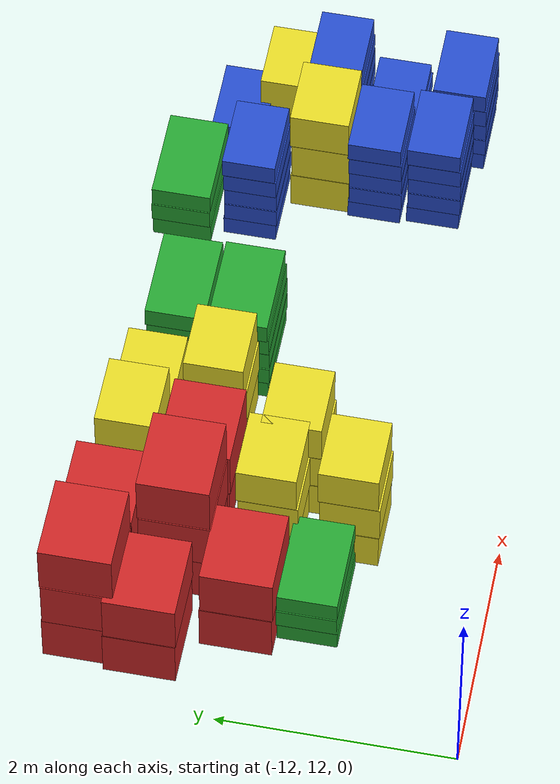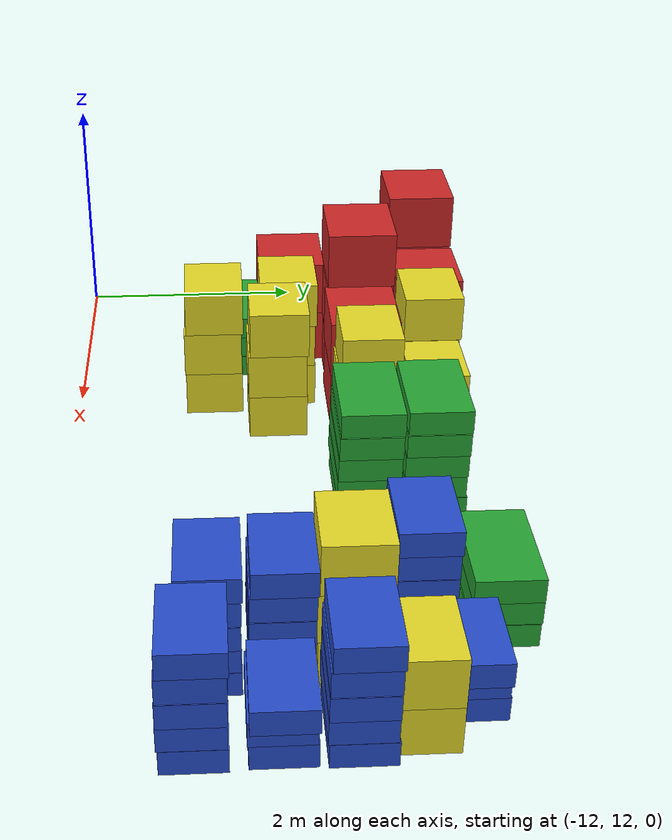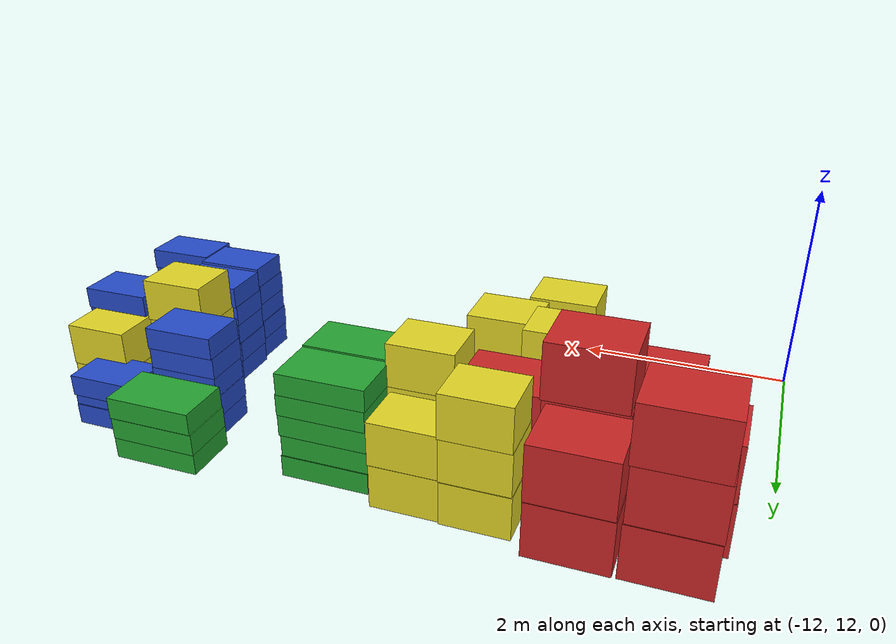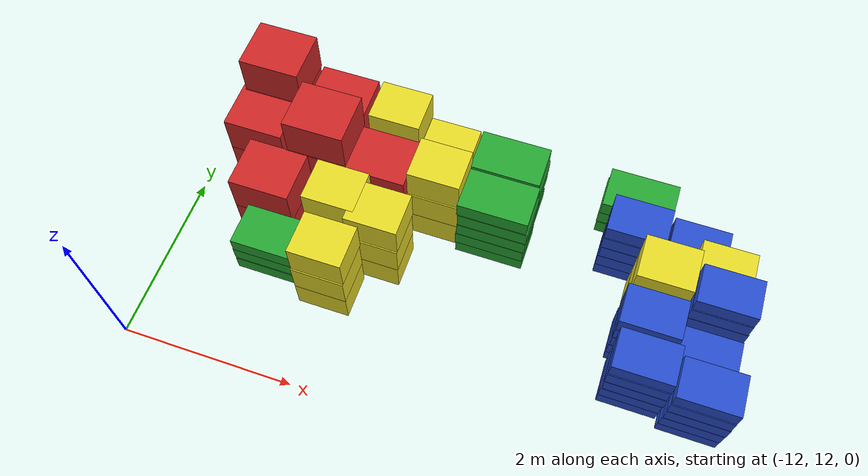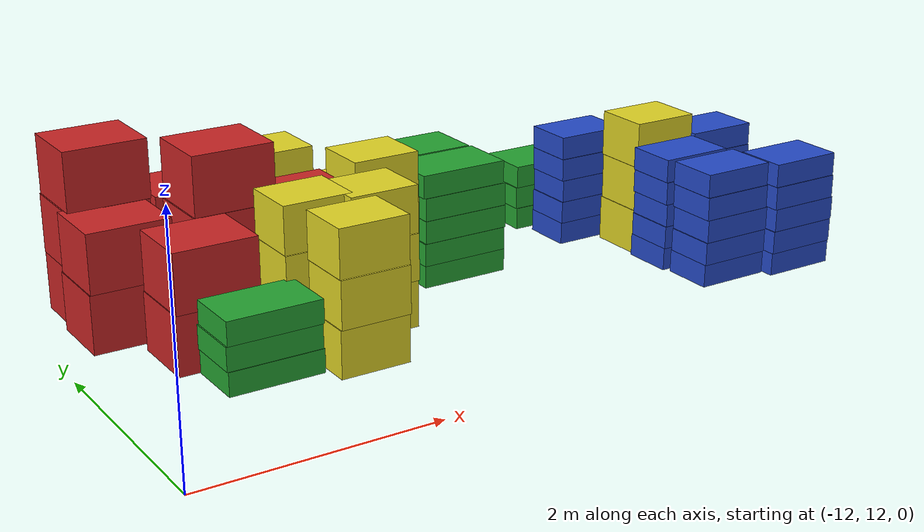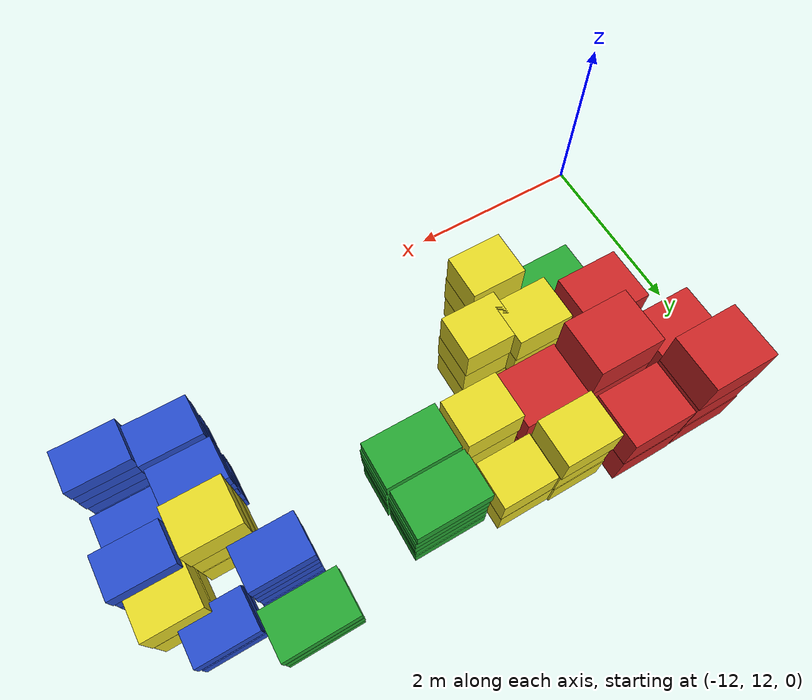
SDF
<sdf version="1.4">
 <model name="factory_baggage_group_B">
  <model name="baggage_A_x2_28">
   <model name="baggage_A_0">
    <static>1</static>
    <link name="link">
     <collision name="collision"><geometry><box><size>0.7 0.6 0.5</size></box></geometry></collision>
     <visual name="visual">
      <geometry><box><size>0.7 0.6 0.5</size></box></geometry>
      <material>
       <script><uri>file://media/materials/scripts/gazebo.material</uri><name>Gazebo/Red</name></script>
      </material>
     </visual>
    </link>
    <pose>0 0 0.25 0 -0 0</pose>
   </model>
   <model name="baggage_A_1">
    <static>1</static>
    <link name="link">
     <collision name="collision"><geometry><box><size>0.7 0.6 0.5</size></box></geometry></collision>
     <visual name="visual">
      <geometry><box><size>0.7 0.6 0.5</size></box></geometry>
      <material>
       <script><uri>file://media/materials/scripts/gazebo.material</uri><name>Gazebo/Red</name></script>
      </material>
     </visual>
    </link>
    <pose>0.0063 -0.0062 0.75 0 -0 0</pose>
   </model>
   <pose>-11.3518 14.6733 0 0 -0 0</pose>
  </model>
  <model name="baggage_A_x3_27">
   <model name="baggage_A_0">
    <static>1</static>
    <link name="link">
     <collision name="collision"><geometry><box><size>0.7 0.6 0.5</size></box></geometry></collision>
     <visual name="visual">
      <geometry><box><size>0.7 0.6 0.5</size></box></geometry>
      <material>
       <script><uri>file://media/materials/scripts/gazebo.material</uri><name>Gazebo/Red</name></script>
      </material>
     </visual>
    </link>
    <pose>0 0 0.25 0 -0 0</pose>
   </model>
   <model name="baggage_A_1">
    <static>1</static>
    <link name="link">
     <collision name="collision"><geometry><box><size>0.7 0.6 0.5</size></box></geometry></collision>
     <visual name="visual">
      <geometry><box><size>0.7 0.6 0.5</size></box></geometry>
      <material>
       <script><uri>file://media/materials/scripts/gazebo.material</uri><name>Gazebo/Red</name></script>
      </material>
     </visual>
    </link>
    <pose>-0.006 -0.0077 0.75 0 -0 0</pose>
   </model>
   <model name="baggage_A_2">
    <static>1</static>
    <link name="link">
     <collision name="collision"><geometry><box><size>0.7 0.6 0.5</size></box></geometry></collision>
     <visual name="visual">
      <geometry><box><size>0.7 0.6 0.5</size></box></geometry>
      <material>
       <script><uri>file://media/materials/scripts/gazebo.material</uri><name>Gazebo/Red</name></script>
      </material>
     </visual>
    </link>
    <pose>0.0045 0.0005 1.25 0 -0 0</pose>
   </model>
   <pose>-11.2994 15.1834 0 0 -0 0</pose>
  </model>
  <model name="baggage_A_x2_29">
   <model name="baggage_A_0">
    <static>1</static>
    <link name="link">
     <collision name="collision"><geometry><box><size>0.7 0.6 0.5</size></box></geometry></collision>
     <visual name="visual">
      <geometry><box><size>0.7 0.6 0.5</size></box></geometry>
      <material>
       <script><uri>file://media/materials/scripts/gazebo.material</uri><name>Gazebo/Red</name></script>
      </material>
     </visual>
    </link>
    <pose>0 0 0.25 0 -0 0</pose>
   </model>
   <model name="baggage_A_1">
    <static>1</static>
    <link name="link">
     <collision name="collision"><geometry><box><size>0.7 0.6 0.5</size></box></geometry></collision>
     <visual name="visual">
      <geometry><box><size>0.7 0.6 0.5</size></box></geometry>
      <material>
       <script><uri>file://media/materials/scripts/gazebo.material</uri><name>Gazebo/Red</name></script>
      </material>
     </visual>
    </link>
    <pose>0.0063 -0.0062 0.75 0 -0 0</pose>
   </model>
   <pose>-10.5679 15.1891 0 0 -0 0</pose>
  </model>
  <model name="baggage_A_x3_28">
   <model name="baggage_A_0">
    <static>1</static>
    <link name="link">
     <collision name="collision"><geometry><box><size>0.7 0.6 0.5</size></box></geometry></collision>
     <visual name="visual">
      <geometry><box><size>0.7 0.6 0.5</size></box></geometry>
      <material>
       <script><uri>file://media/materials/scripts/gazebo.material</uri><name>Gazebo/Red</name></script>
      </material>
     </visual>
    </link>
    <pose>0 0 0.25 0 -0 0</pose>
   </model>
   <model name="baggage_A_1">
    <static>1</static>
    <link name="link">
     <collision name="collision"><geometry><box><size>0.7 0.6 0.5</size></box></geometry></collision>
     <visual name="visual">
      <geometry><box><size>0.7 0.6 0.5</size></box></geometry>
      <material>
       <script><uri>file://media/materials/scripts/gazebo.material</uri><name>Gazebo/Red</name></script>
      </material>
     </visual>
    </link>
    <pose>-0.006 -0.0077 0.75 0 -0 0</pose>
   </model>
   <model name="baggage_A_2">
    <static>1</static>
    <link name="link">
     <collision name="collision"><geometry><box><size>0.7 0.6 0.5</size></box></geometry></collision>
     <visual name="visual">
      <geometry><box><size>0.7 0.6 0.5</size></box></geometry>
      <material>
       <script><uri>file://media/materials/scripts/gazebo.material</uri><name>Gazebo/Red</name></script>
      </material>
     </visual>
    </link>
    <pose>0.0045 0.0005 1.25 0 -0 0</pose>
   </model>
   <pose>-10.5086 14.5494 0 0 -0 0</pose>
  </model>
  <model name="baggage_C_x3_33">
   <model name="baggage_C_0">
    <static>1</static>
    <link name="link">
     <collision name="collision"><geometry><box><size>0.6 0.5 0.4</size></box></geometry></collision>
     <visual name="visual">
      <geometry><box><size>0.6 0.5 0.4</size></box></geometry>
      <material>
       <script><uri>file://media/materials/scripts/gazebo.material</uri><name>Gazebo/Yellow</name></script>
      </material>
     </visual>
    </link>
    <pose>0 0 0.2 0 -0 0</pose>
   </model>
   <model name="baggage_C_1">
    <static>1</static>
    <link name="link">
     <collision name="collision"><geometry><box><size>0.6 0.5 0.4</size></box></geometry></collision>
     <visual name="visual">
      <geometry><box><size>0.6 0.5 0.4</size></box></geometry>
      <material>
       <script><uri>file://media/materials/scripts/gazebo.material</uri><name>Gazebo/Yellow</name></script>
      </material>
     </visual>
    </link>
    <pose>0.0062 -0.0069 0.6 0 -0 0</pose>
   </model>
   <model name="baggage_C_2">
    <static>1</static>
    <link name="link">
     <collision name="collision"><geometry><box><size>0.6 0.5 0.4</size></box></geometry></collision>
     <visual name="visual">
      <geometry><box><size>0.6 0.5 0.4</size></box></geometry>
      <material>
       <script><uri>file://media/materials/scripts/gazebo.material</uri><name>Gazebo/Yellow</name></script>
      </material>
     </visual>
    </link>
    <pose>0.0089 0.0083 1 0 -0 0</pose>
   </model>
   <pose>-9.80919 15.0964 0 0 -0 0</pose>
  </model>
  <model name="baggage_C_x2_34">
   <model name="baggage_C_0">
    <static>1</static>
    <link name="link">
     <collision name="collision"><geometry><box><size>0.6 0.5 0.4</size></box></geometry></collision>
     <visual name="visual">
      <geometry><box><size>0.6 0.5 0.4</size></box></geometry>
      <material>
       <script><uri>file://media/materials/scripts/gazebo.material</uri><name>Gazebo/Yellow</name></script>
      </material>
     </visual>
    </link>
    <pose>0 0 0.2 0 -0 0</pose>
   </model>
   <model name="baggage_C_1">
    <static>1</static>
    <link name="link">
     <collision name="collision"><geometry><box><size>0.6 0.5 0.4</size></box></geometry></collision>
     <visual name="visual">
      <geometry><box><size>0.6 0.5 0.4</size></box></geometry>
      <material>
       <script><uri>file://media/materials/scripts/gazebo.material</uri><name>Gazebo/Yellow</name></script>
      </material>
     </visual>
    </link>
    <pose>0.0093 -0.002 0.6 0 -0 0</pose>
   </model>
   <pose>-9.20665 15.0784 0 0 -0 0</pose>
  </model>
  <model name="baggage_A_x2_30">
   <model name="baggage_A_0">
    <static>1</static>
    <link name="link">
     <collision name="collision"><geometry><box><size>0.7 0.6 0.5</size></box></geometry></collision>
     <visual name="visual">
      <geometry><box><size>0.7 0.6 0.5</size></box></geometry>
      <material>
       <script><uri>file://media/materials/scripts/gazebo.material</uri><name>Gazebo/Red</name></script>
      </material>
     </visual>
    </link>
    <pose>0 0 0.25 0 -0 0</pose>
   </model>
   <model name="baggage_A_1">
    <static>1</static>
    <link name="link">
     <collision name="collision"><geometry><box><size>0.7 0.6 0.5</size></box></geometry></collision>
     <visual name="visual">
      <geometry><box><size>0.7 0.6 0.5</size></box></geometry>
      <material>
       <script><uri>file://media/materials/scripts/gazebo.material</uri><name>Gazebo/Red</name></script>
      </material>
     </visual>
    </link>
    <pose>0.0063 -0.0062 0.75 0 -0 0</pose>
   </model>
   <pose>-9.81686 14.5279 0 0 -0 0</pose>
  </model>
  <model name="baggage_C_x3_34">
   <model name="baggage_C_0">
    <static>1</static>
    <link name="link">
     <collision name="collision"><geometry><box><size>0.6 0.5 0.4</size></box></geometry></collision>
     <visual name="visual">
      <geometry><box><size>0.6 0.5 0.4</size></box></geometry>
      <material>
       <script><uri>file://media/materials/scripts/gazebo.material</uri><name>Gazebo/Yellow</name></script>
      </material>
     </visual>
    </link>
    <pose>0 0 0.2 0 -0 0</pose>
   </model>
   <model name="baggage_C_1">
    <static>1</static>
    <link name="link">
     <collision name="collision"><geometry><box><size>0.6 0.5 0.4</size></box></geometry></collision>
     <visual name="visual">
      <geometry><box><size>0.6 0.5 0.4</size></box></geometry>
      <material>
       <script><uri>file://media/materials/scripts/gazebo.material</uri><name>Gazebo/Yellow</name></script>
      </material>
     </visual>
    </link>
    <pose>0.0062 -0.0069 0.6 0 -0 0</pose>
   </model>
   <model name="baggage_C_2">
    <static>1</static>
    <link name="link">
     <collision name="collision"><geometry><box><size>0.6 0.5 0.4</size></box></geometry></collision>
     <visual name="visual">
      <geometry><box><size>0.6 0.5 0.4</size></box></geometry>
      <material>
       <script><uri>file://media/materials/scripts/gazebo.material</uri><name>Gazebo/Yellow</name></script>
      </material>
     </visual>
    </link>
    <pose>0.0089 0.0083 1 0 -0 0</pose>
   </model>
   <pose>-9.14038 14.4972 0 0 -0 0</pose>
  </model>
  <model name="baggage_D_x5_17">
   <model name="baggage_D_0">
    <static>1</static>
    <link name="link">
     <collision name="collision"><geometry><box><size>0.8 0.5 0.2</size></box></geometry></collision>
     <visual name="visual">
      <geometry><box><size>0.8 0.5 0.2</size></box></geometry>
      <material>
       <script><uri>file://media/materials/scripts/gazebo.material</uri><name>Gazebo/Green</name></script>
      </material>
     </visual>
    </link>
    <pose>0 0 0.1 0 -0 0</pose>
   </model>
   <model name="baggage_D_1">
    <static>1</static>
    <link name="link">
     <collision name="collision"><geometry><box><size>0.8 0.5 0.2</size></box></geometry></collision>
     <visual name="visual">
      <geometry><box><size>0.8 0.5 0.2</size></box></geometry>
      <material>
       <script><uri>file://media/materials/scripts/gazebo.material</uri><name>Gazebo/Green</name></script>
      </material>
     </visual>
    </link>
    <pose>-0.0065 -0.0092 0.3 0 -0 0</pose>
   </model>
   <model name="baggage_D_2">
    <static>1</static>
    <link name="link">
     <collision name="collision"><geometry><box><size>0.8 0.5 0.2</size></box></geometry></collision>
     <visual name="visual">
      <geometry><box><size>0.8 0.5 0.2</size></box></geometry>
      <material>
       <script><uri>file://media/materials/scripts/gazebo.material</uri><name>Gazebo/Green</name></script>
      </material>
     </visual>
    </link>
    <pose>0.005 -0.0052 0.5 0 -0 0</pose>
   </model>
   <model name="baggage_D_3">
    <static>1</static>
    <link name="link">
     <collision name="collision"><geometry><box><size>0.8 0.5 0.2</size></box></geometry></collision>
     <visual name="visual">
      <geometry><box><size>0.8 0.5 0.2</size></box></geometry>
      <material>
       <script><uri>file://media/materials/scripts/gazebo.material</uri><name>Gazebo/Green</name></script>
      </material>
     </visual>
    </link>
    <pose>0.0074 0.0002 0.7 0 -0 0</pose>
   </model>
   <model name="baggage_D_4">
    <static>1</static>
    <link name="link">
     <collision name="collision"><geometry><box><size>0.8 0.5 0.2</size></box></geometry></collision>
     <visual name="visual">
      <geometry><box><size>0.8 0.5 0.2</size></box></geometry>
      <material>
       <script><uri>file://media/materials/scripts/gazebo.material</uri><name>Gazebo/Green</name></script>
      </material>
     </visual>
    </link>
    <pose>-0.006 0.0081 0.9 0 -0 0</pose>
   </model>
   <pose>-8.43464 14.9416 0 0 -0 0</pose>
  </model>
  <model name="baggage_D_x5_18">
   <model name="baggage_D_0">
    <static>1</static>
    <link name="link">
     <collision name="collision"><geometry><box><size>0.8 0.5 0.2</size></box></geometry></collision>
     <visual name="visual">
      <geometry><box><size>0.8 0.5 0.2</size></box></geometry>
      <material>
       <script><uri>file://media/materials/scripts/gazebo.material</uri><name>Gazebo/Green</name></script>
      </material>
     </visual>
    </link>
    <pose>0 0 0.1 0 -0 0</pose>
   </model>
   <model name="baggage_D_1">
    <static>1</static>
    <link name="link">
     <collision name="collision"><geometry><box><size>0.8 0.5 0.2</size></box></geometry></collision>
     <visual name="visual">
      <geometry><box><size>0.8 0.5 0.2</size></box></geometry>
      <material>
       <script><uri>file://media/materials/scripts/gazebo.material</uri><name>Gazebo/Green</name></script>
      </material>
     </visual>
    </link>
    <pose>-0.0065 -0.0092 0.3 0 -0 0</pose>
   </model>
   <model name="baggage_D_2">
    <static>1</static>
    <link name="link">
     <collision name="collision"><geometry><box><size>0.8 0.5 0.2</size></box></geometry></collision>
     <visual name="visual">
      <geometry><box><size>0.8 0.5 0.2</size></box></geometry>
      <material>
       <script><uri>file://media/materials/scripts/gazebo.material</uri><name>Gazebo/Green</name></script>
      </material>
     </visual>
    </link>
    <pose>0.005 -0.0052 0.5 0 -0 0</pose>
   </model>
   <model name="baggage_D_3">
    <static>1</static>
    <link name="link">
     <collision name="collision"><geometry><box><size>0.8 0.5 0.2</size></box></geometry></collision>
     <visual name="visual">
      <geometry><box><size>0.8 0.5 0.2</size></box></geometry>
      <material>
       <script><uri>file://media/materials/scripts/gazebo.material</uri><name>Gazebo/Green</name></script>
      </material>
     </visual>
    </link>
    <pose>0.0074 0.0002 0.7 0 -0 0</pose>
   </model>
   <model name="baggage_D_4">
    <static>1</static>
    <link name="link">
     <collision name="collision"><geometry><box><size>0.8 0.5 0.2</size></box></geometry></collision>
     <visual name="visual">
      <geometry><box><size>0.8 0.5 0.2</size></box></geometry>
      <material>
       <script><uri>file://media/materials/scripts/gazebo.material</uri><name>Gazebo/Green</name></script>
      </material>
     </visual>
    </link>
    <pose>-0.006 0.0081 0.9 0 -0 0</pose>
   </model>
   <pose>-8.42027 14.416 0 0 -0 0</pose>
  </model>
  <model name="baggage_D_x3_36">
   <model name="baggage_D_0">
    <static>1</static>
    <link name="link">
     <collision name="collision"><geometry><box><size>0.8 0.5 0.2</size></box></geometry></collision>
     <visual name="visual">
      <geometry><box><size>0.8 0.5 0.2</size></box></geometry>
      <material>
       <script><uri>file://media/materials/scripts/gazebo.material</uri><name>Gazebo/Green</name></script>
      </material>
     </visual>
    </link>
    <pose>0 0 0.1 0 -0 0</pose>
   </model>
   <model name="baggage_D_1">
    <static>1</static>
    <link name="link">
     <collision name="collision"><geometry><box><size>0.8 0.5 0.2</size></box></geometry></collision>
     <visual name="visual">
      <geometry><box><size>0.8 0.5 0.2</size></box></geometry>
      <material>
       <script><uri>file://media/materials/scripts/gazebo.material</uri><name>Gazebo/Green</name></script>
      </material>
     </visual>
    </link>
    <pose>-0.0056 0.0083 0.3 0 -0 0</pose>
   </model>
   <model name="baggage_D_2">
    <static>1</static>
    <link name="link">
     <collision name="collision"><geometry><box><size>0.8 0.5 0.2</size></box></geometry></collision>
     <visual name="visual">
      <geometry><box><size>0.8 0.5 0.2</size></box></geometry>
      <material>
       <script><uri>file://media/materials/scripts/gazebo.material</uri><name>Gazebo/Green</name></script>
      </material>
     </visual>
    </link>
    <pose>0.0053 0.0057 0.5 0 -0 0</pose>
   </model>
   <pose>-6.935990 15.201237 0 0 -0 0</pose>
  </model>
  <model name="baggage_A_x2_31">
   <model name="baggage_A_0">
    <static>1</static>
    <link name="link">
     <collision name="collision"><geometry><box><size>0.7 0.6 0.5</size></box></geometry></collision>
     <visual name="visual">
      <geometry><box><size>0.7 0.6 0.5</size></box></geometry>
      <material>
       <script><uri>file://media/materials/scripts/gazebo.material</uri><name>Gazebo/Red</name></script>
      </material>
     </visual>
    </link>
    <pose>0 0 0.25 0 -0 0</pose>
   </model>
   <model name="baggage_A_1">
    <static>1</static>
    <link name="link">
     <collision name="collision"><geometry><box><size>0.7 0.6 0.5</size></box></geometry></collision>
     <visual name="visual">
      <geometry><box><size>0.7 0.6 0.5</size></box></geometry>
      <material>
       <script><uri>file://media/materials/scripts/gazebo.material</uri><name>Gazebo/Red</name></script>
      </material>
     </visual>
    </link>
    <pose>0.0063 -0.0062 0.75 0 -0 0</pose>
   </model>
   <pose>-10.9635 13.9549 0 0 -0 0</pose>
  </model>
  <model name="baggage_C_x3_35">
   <model name="baggage_C_0">
    <static>1</static>
    <link name="link">
     <collision name="collision"><geometry><box><size>0.6 0.5 0.4</size></box></geometry></collision>
     <visual name="visual">
      <geometry><box><size>0.6 0.5 0.4</size></box></geometry>
      <material>
       <script><uri>file://media/materials/scripts/gazebo.material</uri><name>Gazebo/Yellow</name></script>
      </material>
     </visual>
    </link>
    <pose>0 0 0.2 0 -0 0</pose>
   </model>
   <model name="baggage_C_1">
    <static>1</static>
    <link name="link">
     <collision name="collision"><geometry><box><size>0.6 0.5 0.4</size></box></geometry></collision>
     <visual name="visual">
      <geometry><box><size>0.6 0.5 0.4</size></box></geometry>
      <material>
       <script><uri>file://media/materials/scripts/gazebo.material</uri><name>Gazebo/Yellow</name></script>
      </material>
     </visual>
    </link>
    <pose>0.0062 -0.0069 0.6 0 -0 0</pose>
   </model>
   <model name="baggage_C_2">
    <static>1</static>
    <link name="link">
     <collision name="collision"><geometry><box><size>0.6 0.5 0.4</size></box></geometry></collision>
     <visual name="visual">
      <geometry><box><size>0.6 0.5 0.4</size></box></geometry>
      <material>
       <script><uri>file://media/materials/scripts/gazebo.material</uri><name>Gazebo/Yellow</name></script>
      </material>
     </visual>
    </link>
    <pose>0.0089 0.0083 1 0 -0 0</pose>
   </model>
   <pose>-10.1155 13.8686 0 0 -0 0</pose>
  </model>
  <model name="baggage_D_x3_37">
   <model name="baggage_D_0">
    <static>1</static>
    <link name="link">
     <collision name="collision"><geometry><box><size>0.8 0.5 0.2</size></box></geometry></collision>
     <visual name="visual">
      <geometry><box><size>0.8 0.5 0.2</size></box></geometry>
      <material>
       <script><uri>file://media/materials/scripts/gazebo.material</uri><name>Gazebo/Green</name></script>
      </material>
     </visual>
    </link>
    <pose>0 0 0.1 0 -0 0</pose>
   </model>
   <model name="baggage_D_1">
    <static>1</static>
    <link name="link">
     <collision name="collision"><geometry><box><size>0.8 0.5 0.2</size></box></geometry></collision>
     <visual name="visual">
      <geometry><box><size>0.8 0.5 0.2</size></box></geometry>
      <material>
       <script><uri>file://media/materials/scripts/gazebo.material</uri><name>Gazebo/Green</name></script>
      </material>
     </visual>
    </link>
    <pose>-0.0056 0.0083 0.3 0 -0 0</pose>
   </model>
   <model name="baggage_D_2">
    <static>1</static>
    <link name="link">
     <collision name="collision"><geometry><box><size>0.8 0.5 0.2</size></box></geometry></collision>
     <visual name="visual">
      <geometry><box><size>0.8 0.5 0.2</size></box></geometry>
      <material>
       <script><uri>file://media/materials/scripts/gazebo.material</uri><name>Gazebo/Green</name></script>
      </material>
     </visual>
    </link>
    <pose>0.0053 0.0057 0.5 0 -0 0</pose>
   </model>
   <pose>-10.7396 13.3958 0 0 -0 0</pose>
  </model>
  <model name="baggage_B_x5_25">
   <model name="baggage_B_0">
    <static>1</static>
    <link name="link">
     <collision name="collision"><geometry><box><size>0.65 0.45 0.2</size></box></geometry></collision>
     <visual name="visual">
      <geometry><box><size>0.65 0.45 0.2</size></box></geometry>
      <material>
       <script><uri>file://media/materials/scripts/gazebo.material</uri><name>Gazebo/Blue</name></script>
      </material>
     </visual>
    </link>
    <pose>0 0 0.1 0 -0 0</pose>
   </model>
   <model name="baggage_B_1">
    <static>1</static>
    <link name="link">
     <collision name="collision"><geometry><box><size>0.65 0.45 0.2</size></box></geometry></collision>
     <visual name="visual">
      <geometry><box><size>0.65 0.45 0.2</size></box></geometry>
      <material>
       <script><uri>file://media/materials/scripts/gazebo.material</uri><name>Gazebo/Blue</name></script>
      </material>
     </visual>
    </link>
    <pose>-0.0014 -0.0091 0.3 0 -0 0</pose>
   </model>
   <model name="baggage_B_2">
    <static>1</static>
    <link name="link">
     <collision name="collision"><geometry><box><size>0.65 0.45 0.2</size></box></geometry></collision>
     <visual name="visual">
      <geometry><box><size>0.65 0.45 0.2</size></box></geometry>
      <material>
       <script><uri>file://media/materials/scripts/gazebo.material</uri><name>Gazebo/Blue</name></script>
      </material>
     </visual>
    </link>
    <pose>0.0076 -0.0066 0.5 0 -0 0</pose>
   </model>
   <model name="baggage_B_3">
    <static>1</static>
    <link name="link">
     <collision name="collision"><geometry><box><size>0.65 0.45 0.2</size></box></geometry></collision>
     <visual name="visual">
      <geometry><box><size>0.65 0.45 0.2</size></box></geometry>
      <material>
       <script><uri>file://media/materials/scripts/gazebo.material</uri><name>Gazebo/Blue</name></script>
      </material>
     </visual>
    </link>
    <pose>0 -0.0032 0.7 0 -0 0</pose>
   </model>
   <model name="baggage_B_4">
    <static>1</static>
    <link name="link">
     <collision name="collision"><geometry><box><size>0.65 0.45 0.2</size></box></geometry></collision>
     <visual name="visual">
      <geometry><box><size>0.65 0.45 0.2</size></box></geometry>
      <material>
       <script><uri>file://media/materials/scripts/gazebo.material</uri><name>Gazebo/Blue</name></script>
      </material>
     </visual>
    </link>
    <pose>0.0023 0.0073 0.9 0 -0 0</pose>
   </model>
   <pose>-5.8203 13.029 0 0 -0 0</pose>
  </model>
  <model name="baggage_B_x5_26">
   <model name="baggage_B_0">
    <static>1</static>
    <link name="link">
     <collision name="collision"><geometry><box><size>0.65 0.45 0.2</size></box></geometry></collision>
     <visual name="visual">
      <geometry><box><size>0.65 0.45 0.2</size></box></geometry>
      <material>
       <script><uri>file://media/materials/scripts/gazebo.material</uri><name>Gazebo/Blue</name></script>
      </material>
     </visual>
    </link>
    <pose>0 0 0.1 0 -0 0</pose>
   </model>
   <model name="baggage_B_1">
    <static>1</static>
    <link name="link">
     <collision name="collision"><geometry><box><size>0.65 0.45 0.2</size></box></geometry></collision>
     <visual name="visual">
      <geometry><box><size>0.65 0.45 0.2</size></box></geometry>
      <material>
       <script><uri>file://media/materials/scripts/gazebo.material</uri><name>Gazebo/Blue</name></script>
      </material>
     </visual>
    </link>
    <pose>-0.0014 -0.0091 0.3 0 -0 0</pose>
   </model>
   <model name="baggage_B_2">
    <static>1</static>
    <link name="link">
     <collision name="collision"><geometry><box><size>0.65 0.45 0.2</size></box></geometry></collision>
     <visual name="visual">
      <geometry><box><size>0.65 0.45 0.2</size></box></geometry>
      <material>
       <script><uri>file://media/materials/scripts/gazebo.material</uri><name>Gazebo/Blue</name></script>
      </material>
     </visual>
    </link>
    <pose>0.0076 -0.0066 0.5 0 -0 0</pose>
   </model>
   <model name="baggage_B_3">
    <static>1</static>
    <link name="link">
     <collision name="collision"><geometry><box><size>0.65 0.45 0.2</size></box></geometry></collision>
     <visual name="visual">
      <geometry><box><size>0.65 0.45 0.2</size></box></geometry>
      <material>
       <script><uri>file://media/materials/scripts/gazebo.material</uri><name>Gazebo/Blue</name></script>
      </material>
     </visual>
    </link>
    <pose>0 -0.0032 0.7 0 -0 0</pose>
   </model>
   <model name="baggage_B_4">
    <static>1</static>
    <link name="link">
     <collision name="collision"><geometry><box><size>0.65 0.45 0.2</size></box></geometry></collision>
     <visual name="visual">
      <geometry><box><size>0.65 0.45 0.2</size></box></geometry>
      <material>
       <script><uri>file://media/materials/scripts/gazebo.material</uri><name>Gazebo/Blue</name></script>
      </material>
     </visual>
    </link>
    <pose>0.0023 0.0073 0.9 0 -0 0</pose>
   </model>
   <pose>-6.48909 13.1319 0 0 -0 0</pose>
  </model>
  <model name="baggage_B_x3_35">
   <model name="baggage_B_0">
    <static>1</static>
    <link name="link">
     <collision name="collision"><geometry><box><size>0.65 0.45 0.2</size></box></geometry></collision>
     <visual name="visual">
      <geometry><box><size>0.65 0.45 0.2</size></box></geometry>
      <material>
       <script><uri>file://media/materials/scripts/gazebo.material</uri><name>Gazebo/Blue</name></script>
      </material>
     </visual>
    </link>
    <pose>0 0 0.1 0 -0 0</pose>
   </model>
   <model name="baggage_B_1">
    <static>1</static>
    <link name="link">
     <collision name="collision"><geometry><box><size>0.65 0.45 0.2</size></box></geometry></collision>
     <visual name="visual">
      <geometry><box><size>0.65 0.45 0.2</size></box></geometry>
      <material>
       <script><uri>file://media/materials/scripts/gazebo.material</uri><name>Gazebo/Blue</name></script>
      </material>
     </visual>
    </link>
    <pose>0.0028 -0.0086 0.3 0 -0 0</pose>
   </model>
   <model name="baggage_B_2">
    <static>1</static>
    <link name="link">
     <collision name="collision"><geometry><box><size>0.65 0.45 0.2</size></box></geometry></collision>
     <visual name="visual">
      <geometry><box><size>0.65 0.45 0.2</size></box></geometry>
      <material>
       <script><uri>file://media/materials/scripts/gazebo.material</uri><name>Gazebo/Blue</name></script>
      </material>
     </visual>
    </link>
    <pose>0.0092 0.006 0.4 0 -0 0</pose>
   </model>
   <pose>-5.83633 13.5988 0 0 -0 0</pose>
  </model>
  <model name="baggage_B_x5_27">
   <model name="baggage_B_0">
    <static>1</static>
    <link name="link">
     <collision name="collision"><geometry><box><size>0.65 0.45 0.2</size></box></geometry></collision>
     <visual name="visual">
      <geometry><box><size>0.65 0.45 0.2</size></box></geometry>
      <material>
       <script><uri>file://media/materials/scripts/gazebo.material</uri><name>Gazebo/Blue</name></script>
      </material>
     </visual>
    </link>
    <pose>0 0 0.1 0 -0 0</pose>
   </model>
   <model name="baggage_B_1">
    <static>1</static>
    <link name="link">
     <collision name="collision"><geometry><box><size>0.65 0.45 0.2</size></box></geometry></collision>
     <visual name="visual">
      <geometry><box><size>0.65 0.45 0.2</size></box></geometry>
      <material>
       <script><uri>file://media/materials/scripts/gazebo.material</uri><name>Gazebo/Blue</name></script>
      </material>
     </visual>
    </link>
    <pose>-0.0014 -0.0091 0.3 0 -0 0</pose>
   </model>
   <model name="baggage_B_2">
    <static>1</static>
    <link name="link">
     <collision name="collision"><geometry><box><size>0.65 0.45 0.2</size></box></geometry></collision>
     <visual name="visual">
      <geometry><box><size>0.65 0.45 0.2</size></box></geometry>
      <material>
       <script><uri>file://media/materials/scripts/gazebo.material</uri><name>Gazebo/Blue</name></script>
      </material>
     </visual>
    </link>
    <pose>0.0076 -0.0066 0.5 0 -0 0</pose>
   </model>
   <model name="baggage_B_3">
    <static>1</static>
    <link name="link">
     <collision name="collision"><geometry><box><size>0.65 0.45 0.2</size></box></geometry></collision>
     <visual name="visual">
      <geometry><box><size>0.65 0.45 0.2</size></box></geometry>
      <material>
       <script><uri>file://media/materials/scripts/gazebo.material</uri><name>Gazebo/Blue</name></script>
      </material>
     </visual>
    </link>
    <pose>0 -0.0032 0.7 0 -0 0</pose>
   </model>
   <model name="baggage_B_4">
    <static>1</static>
    <link name="link">
     <collision name="collision"><geometry><box><size>0.65 0.45 0.2</size></box></geometry></collision>
     <visual name="visual">
      <geometry><box><size>0.65 0.45 0.2</size></box></geometry>
      <material>
       <script><uri>file://media/materials/scripts/gazebo.material</uri><name>Gazebo/Blue</name></script>
      </material>
     </visual>
    </link>
    <pose>0.0023 0.0073 0.9 0 -0 0</pose>
   </model>
   <pose>-6.52492 13.6327 0 0 -0 0</pose>
  </model>
  <model name="baggage_B_x5_28">
   <model name="baggage_B_0">
    <static>1</static>
    <link name="link">
     <collision name="collision"><geometry><box><size>0.65 0.45 0.2</size></box></geometry></collision>
     <visual name="visual">
      <geometry><box><size>0.65 0.45 0.2</size></box></geometry>
      <material>
       <script><uri>file://media/materials/scripts/gazebo.material</uri><name>Gazebo/Blue</name></script>
      </material>
     </visual>
    </link>
    <pose>0 0 0.1 0 -0 0</pose>
   </model>
   <model name="baggage_B_1">
    <static>1</static>
    <link name="link">
     <collision name="collision"><geometry><box><size>0.65 0.45 0.2</size></box></geometry></collision>
     <visual name="visual">
      <geometry><box><size>0.65 0.45 0.2</size></box></geometry>
      <material>
       <script><uri>file://media/materials/scripts/gazebo.material</uri><name>Gazebo/Blue</name></script>
      </material>
     </visual>
    </link>
    <pose>-0.0014 -0.0091 0.3 0 -0 0</pose>
   </model>
   <model name="baggage_B_2">
    <static>1</static>
    <link name="link">
     <collision name="collision"><geometry><box><size>0.65 0.45 0.2</size></box></geometry></collision>
     <visual name="visual">
      <geometry><box><size>0.65 0.45 0.2</size></box></geometry>
      <material>
       <script><uri>file://media/materials/scripts/gazebo.material</uri><name>Gazebo/Blue</name></script>
      </material>
     </visual>
    </link>
    <pose>0.0076 -0.0066 0.5 0 -0 0</pose>
   </model>
   <model name="baggage_B_3">
    <static>1</static>
    <link name="link">
     <collision name="collision"><geometry><box><size>0.65 0.45 0.2</size></box></geometry></collision>
     <visual name="visual">
      <geometry><box><size>0.65 0.45 0.2</size></box></geometry>
      <material>
       <script><uri>file://media/materials/scripts/gazebo.material</uri><name>Gazebo/Blue</name></script>
      </material>
     </visual>
    </link>
    <pose>0 -0.0032 0.7 0 -0 0</pose>
   </model>
   <model name="baggage_B_4">
    <static>1</static>
    <link name="link">
     <collision name="collision"><geometry><box><size>0.65 0.45 0.2</size></box></geometry></collision>
     <visual name="visual">
      <geometry><box><size>0.65 0.45 0.2</size></box></geometry>
      <material>
       <script><uri>file://media/materials/scripts/gazebo.material</uri><name>Gazebo/Blue</name></script>
      </material>
     </visual>
    </link>
    <pose>0.0023 0.0073 0.9 0 -0 0</pose>
   </model>
   <pose>-5.82404 14.1064 0 0 -0 0</pose>
  </model>
  <model name="baggage_C_x3_36">
   <model name="baggage_C_0">
    <static>1</static>
    <link name="link">
     <collision name="collision"><geometry><box><size>0.6 0.5 0.4</size></box></geometry></collision>
     <visual name="visual">
      <geometry><box><size>0.6 0.5 0.4</size></box></geometry>
      <material>
       <script><uri>file://media/materials/scripts/gazebo.material</uri><name>Gazebo/Yellow</name></script>
      </material>
     </visual>
    </link>
    <pose>0 0 0.2 0 -0 0</pose>
   </model>
   <model name="baggage_C_1">
    <static>1</static>
    <link name="link">
     <collision name="collision"><geometry><box><size>0.6 0.5 0.4</size></box></geometry></collision>
     <visual name="visual">
      <geometry><box><size>0.6 0.5 0.4</size></box></geometry>
      <material>
       <script><uri>file://media/materials/scripts/gazebo.material</uri><name>Gazebo/Yellow</name></script>
      </material>
     </visual>
    </link>
    <pose>0.0062 -0.0069 0.6 0 -0 0</pose>
   </model>
   <model name="baggage_C_2">
    <static>1</static>
    <link name="link">
     <collision name="collision"><geometry><box><size>0.6 0.5 0.4</size></box></geometry></collision>
     <visual name="visual">
      <geometry><box><size>0.6 0.5 0.4</size></box></geometry>
      <material>
       <script><uri>file://media/materials/scripts/gazebo.material</uri><name>Gazebo/Yellow</name></script>
      </material>
     </visual>
    </link>
    <pose>0.0089 0.0083 1 0 -0 0</pose>
   </model>
   <pose>-6.51675 14.1099 0 0 -0 0</pose>
  </model>
  <model name="baggage_C_x2_35">
   <model name="baggage_C_0">
    <static>1</static>
    <link name="link">
     <collision name="collision"><geometry><box><size>0.6 0.5 0.4</size></box></geometry></collision>
     <visual name="visual">
      <geometry><box><size>0.6 0.5 0.4</size></box></geometry>
      <material>
       <script><uri>file://media/materials/scripts/gazebo.material</uri><name>Gazebo/Yellow</name></script>
      </material>
     </visual>
    </link>
    <pose>0 0 0.2 0 -0 0</pose>
   </model>
   <model name="baggage_C_1">
    <static>1</static>
    <link name="link">
     <collision name="collision"><geometry><box><size>0.6 0.5 0.4</size></box></geometry></collision>
     <visual name="visual">
      <geometry><box><size>0.6 0.5 0.4</size></box></geometry>
      <material>
       <script><uri>file://media/materials/scripts/gazebo.material</uri><name>Gazebo/Yellow</name></script>
      </material>
     </visual>
    </link>
    <pose>0.0093 -0.002 0.6 0 -0 0</pose>
   </model>
   <pose>-5.88392 14.4954 0 0 -0 0</pose>
  </model>
  <model name="baggage_B_x3_36">
   <model name="baggage_B_0">
    <static>1</static>
    <link name="link">
     <collision name="collision"><geometry><box><size>0.65 0.45 0.2</size></box></geometry></collision>
     <visual name="visual">
      <geometry><box><size>0.65 0.45 0.2</size></box></geometry>
      <material>
       <script><uri>file://media/materials/scripts/gazebo.material</uri><name>Gazebo/Blue</name></script>
      </material>
     </visual>
    </link>
    <pose>0 0 0.1 0 -0 0</pose>
   </model>
   <model name="baggage_B_1">
    <static>1</static>
    <link name="link">
     <collision name="collision"><geometry><box><size>0.65 0.45 0.2</size></box></geometry></collision>
     <visual name="visual">
      <geometry><box><size>0.65 0.45 0.2</size></box></geometry>
      <material>
       <script><uri>file://media/materials/scripts/gazebo.material</uri><name>Gazebo/Blue</name></script>
      </material>
     </visual>
    </link>
    <pose>0.0028 -0.0086 0.3 0 -0 0</pose>
   </model>
   <model name="baggage_B_2">
    <static>1</static>
    <link name="link">
     <collision name="collision"><geometry><box><size>0.65 0.45 0.2</size></box></geometry></collision>
     <visual name="visual">
      <geometry><box><size>0.65 0.45 0.2</size></box></geometry>
      <material>
       <script><uri>file://media/materials/scripts/gazebo.material</uri><name>Gazebo/Blue</name></script>
      </material>
     </visual>
    </link>
    <pose>0.0092 0.006 0.4 0 -0 0</pose>
   </model>
   <pose>-6.17302 14.8766 0 0 -0 0</pose>
  </model>
  <model name="baggage_B_x5_29">
   <model name="baggage_B_0">
    <static>1</static>
    <link name="link">
     <collision name="collision"><geometry><box><size>0.65 0.45 0.2</size></box></geometry></collision>
     <visual name="visual">
      <geometry><box><size>0.65 0.45 0.2</size></box></geometry>
      <material>
       <script><uri>file://media/materials/scripts/gazebo.material</uri><name>Gazebo/Blue</name></script>
      </material>
     </visual>
    </link>
    <pose>0 0 0.1 0 -0 0</pose>
   </model>
   <model name="baggage_B_1">
    <static>1</static>
    <link name="link">
     <collision name="collision"><geometry><box><size>0.65 0.45 0.2</size></box></geometry></collision>
     <visual name="visual">
      <geometry><box><size>0.65 0.45 0.2</size></box></geometry>
      <material>
       <script><uri>file://media/materials/scripts/gazebo.material</uri><name>Gazebo/Blue</name></script>
      </material>
     </visual>
    </link>
    <pose>-0.0014 -0.0091 0.3 0 -0 0</pose>
   </model>
   <model name="baggage_B_2">
    <static>1</static>
    <link name="link">
     <collision name="collision"><geometry><box><size>0.65 0.45 0.2</size></box></geometry></collision>
     <visual name="visual">
      <geometry><box><size>0.65 0.45 0.2</size></box></geometry>
      <material>
       <script><uri>file://media/materials/scripts/gazebo.material</uri><name>Gazebo/Blue</name></script>
      </material>
     </visual>
    </link>
    <pose>0.0076 -0.0066 0.5 0 -0 0</pose>
   </model>
   <model name="baggage_B_3">
    <static>1</static>
    <link name="link">
     <collision name="collision"><geometry><box><size>0.65 0.45 0.2</size></box></geometry></collision>
     <visual name="visual">
      <geometry><box><size>0.65 0.45 0.2</size></box></geometry>
      <material>
       <script><uri>file://media/materials/scripts/gazebo.material</uri><name>Gazebo/Blue</name></script>
      </material>
     </visual>
    </link>
    <pose>0 -0.0032 0.7 0 -0 0</pose>
   </model>
   <model name="baggage_B_4">
    <static>1</static>
    <link name="link">
     <collision name="collision"><geometry><box><size>0.65 0.45 0.2</size></box></geometry></collision>
     <visual name="visual">
      <geometry><box><size>0.65 0.45 0.2</size></box></geometry>
      <material>
       <script><uri>file://media/materials/scripts/gazebo.material</uri><name>Gazebo/Blue</name></script>
      </material>
     </visual>
    </link>
    <pose>0.0023 0.0073 0.9 0 -0 0</pose>
   </model>
   <pose>-6.89474 14.6388 0 0 -0 0</pose>
  </model>
  <model name="baggage_C_x3_38">
   <model name="baggage_C_0">
    <static>1</static>
    <link name="link">
     <collision name="collision"><geometry><box><size>0.6 0.5 0.4</size></box></geometry></collision>
     <visual name="visual">
      <geometry><box><size>0.6 0.5 0.4</size></box></geometry>
      <material>
       <script><uri>file://media/materials/scripts/gazebo.material</uri><name>Gazebo/Yellow</name></script>
      </material>
     </visual>
    </link>
    <pose>0 0 0.2 0 -0 0</pose>
   </model>
   <model name="baggage_C_1">
    <static>1</static>
    <link name="link">
     <collision name="collision"><geometry><box><size>0.6 0.5 0.4</size></box></geometry></collision>
     <visual name="visual">
      <geometry><box><size>0.6 0.5 0.4</size></box></geometry>
      <material>
       <script><uri>file://media/materials/scripts/gazebo.material</uri><name>Gazebo/Yellow</name></script>
      </material>
     </visual>
    </link>
    <pose>0.0062 -0.0069 0.6 0 -0 0</pose>
   </model>
   <model name="baggage_C_2">
    <static>1</static>
    <link name="link">
     <collision name="collision"><geometry><box><size>0.6 0.5 0.4</size></box></geometry></collision>
     <visual name="visual">
      <geometry><box><size>0.6 0.5 0.4</size></box></geometry>
      <material>
       <script><uri>file://media/materials/scripts/gazebo.material</uri><name>Gazebo/Yellow</name></script>
      </material>
     </visual>
    </link>
    <pose>0.0089 0.0083 1 0 -0 0</pose>
   </model>
   <pose>-10.001 13.2135 0 0 -0 0</pose>
  </model>
  <model name="baggage_C_x3_39">
   <model name="baggage_C_0">
    <static>1</static>
    <link name="link">
     <collision name="collision"><geometry><box><size>0.6 0.5 0.4</size></box></geometry></collision>
     <visual name="visual">
      <geometry><box><size>0.6 0.5 0.4</size></box></geometry>
      <material>
       <script><uri>file://media/materials/scripts/gazebo.material</uri><name>Gazebo/Yellow</name></script>
      </material>
     </visual>
    </link>
    <pose>0 0 0.2 0 -0 0</pose>
   </model>
   <model name="baggage_C_1">
    <static>1</static>
    <link name="link">
     <collision name="collision"><geometry><box><size>0.6 0.5 0.4</size></box></geometry></collision>
     <visual name="visual">
      <geometry><box><size>0.6 0.5 0.4</size></box></geometry>
      <material>
       <script><uri>file://media/materials/scripts/gazebo.material</uri><name>Gazebo/Yellow</name></script>
      </material>
     </visual>
    </link>
    <pose>0.0062 -0.0069 0.6 0 -0 0</pose>
   </model>
   <model name="baggage_C_2">
    <static>1</static>
    <link name="link">
     <collision name="collision"><geometry><box><size>0.6 0.5 0.4</size></box></geometry></collision>
     <visual name="visual">
      <geometry><box><size>0.6 0.5 0.4</size></box></geometry>
      <material>
       <script><uri>file://media/materials/scripts/gazebo.material</uri><name>Gazebo/Yellow</name></script>
      </material>
     </visual>
    </link>
    <pose>0.0089 0.0083 1 0 -0 0</pose>
   </model>
   <pose>-9.59122 13.761 0 0 -0 0</pose>
  </model>
 </model>
</sdf>
